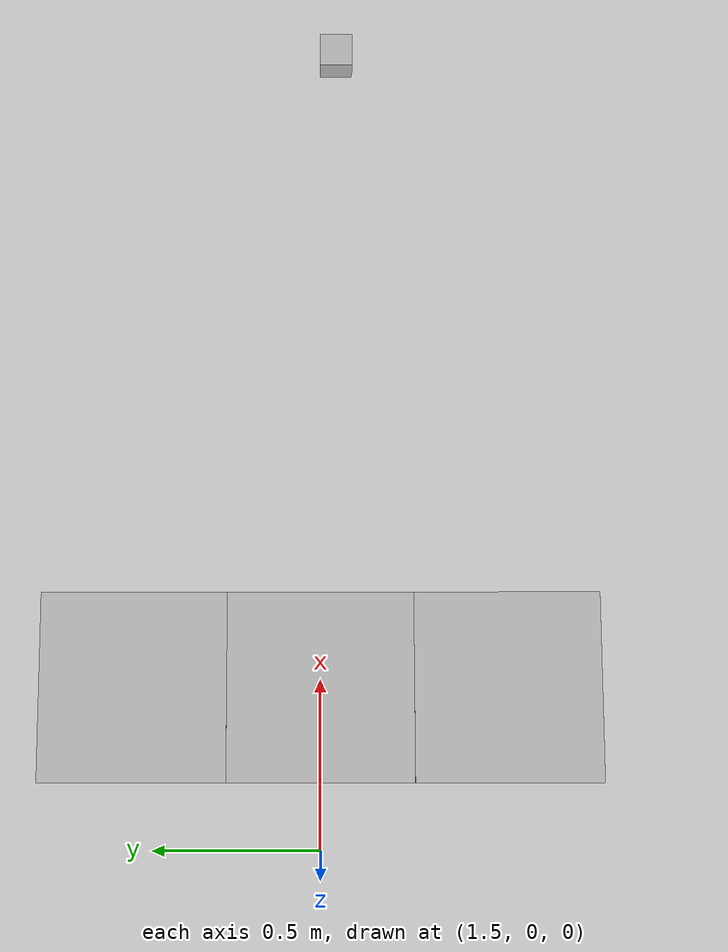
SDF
<?xml version="1.0" ?>
<!--
  Demo world with a widget displaying images coming from a camera sensor.
-->
<sdf version="1.8">
  <world name="camera_sensor">
    <physics name="1ms" type="ignored">
      <max_step_size>0.001</max_step_size>
      <real_time_factor>1.0</real_time_factor>
    </physics>
    <plugin
      filename="gz-sim-physics-system"
      name="gz::sim::systems::Physics">
    </plugin>
    <plugin
      filename="gz-sim-sensors-system"
      name="gz::sim::systems::Sensors">
      <render_engine>ogre2</render_engine>
    </plugin>
    <plugin
      filename="gz-sim-user-commands-system"
      name="gz::sim::systems::UserCommands">
    </plugin>
    <plugin
      filename="gz-sim-scene-broadcaster-system"
      name="gz::sim::systems::SceneBroadcaster">
    </plugin>

    <scene>
      <ambient>1.0 1.0 1.0</ambient>
      <background>0.8 0.8 0.8</background>
      <grid>true</grid>
    </scene>

    <gui fullscreen="0">

      <!-- 3D scene -->
      <plugin filename="MinimalScene" name="3D View">
        <gz-gui>
          <title>3D View</title>
          <property type="bool" key="showTitleBar">false</property>
          <property type="string" key="state">docked</property>
        </gz-gui>

        <engine>ogre2</engine>
        <scene>scene</scene>
        <ambient_light>0.4 0.4 0.4</ambient_light>
        <background_color>0.8 0.8 0.8</background_color>
        <camera_pose>-6 0 6 0 0.5 0</camera_pose>
      </plugin>

      <!-- Plugins that add functionality to the scene -->
      <plugin filename="EntityContextMenuPlugin" name="Entity context menu">
        <gz-gui>
          <property key="state" type="string">floating</property>
          <property key="width" type="double">5</property>
          <property key="height" type="double">5</property>
          <property key="showTitleBar" type="bool">false</property>
        </gz-gui>
      </plugin>
      <plugin filename="GzSceneManager" name="Scene Manager">
        <gz-gui>
          <property key="resizable" type="bool">false</property>
          <property key="width" type="double">5</property>
          <property key="height" type="double">5</property>
          <property key="state" type="string">floating</property>
          <property key="showTitleBar" type="bool">false</property>
        </gz-gui>
      </plugin>
      <plugin filename="InteractiveViewControl" name="Interactive view control">
        <gz-gui>
          <property key="resizable" type="bool">false</property>
          <property key="width" type="double">5</property>
          <property key="height" type="double">5</property>
          <property key="state" type="string">floating</property>
          <property key="showTitleBar" type="bool">false</property>
        </gz-gui>
      </plugin>
      <plugin filename="CameraTracking" name="Camera Tracking">
        <gz-gui>
          <property key="resizable" type="bool">false</property>
          <property key="width" type="double">5</property>
          <property key="height" type="double">5</property>
          <property key="state" type="string">floating</property>
          <property key="showTitleBar" type="bool">false</property>
        </gz-gui>
      </plugin>
      <!-- World control -->
      <plugin filename="WorldControl" name="World control">
        <gz-gui>
          <title>World control</title>
          <property type="bool" key="showTitleBar">false</property>
          <property type="bool" key="resizable">false</property>
          <property type="double" key="height">72</property>
          <property type="double" key="z">1</property>

          <property type="string" key="state">floating</property>
          <anchors target="3D View">
            <line own="left" target="left"/>
            <line own="bottom" target="bottom"/>
          </anchors>
        </gz-gui>

        <play_pause>true</play_pause>
        <step>true</step>
        <start_paused>false</start_paused>
        <use_event>true</use_event>

      </plugin>

      <!-- World statistics -->
      <plugin filename="WorldStats" name="World stats">
        <gz-gui>
          <title>World stats</title>
          <property type="bool" key="showTitleBar">false</property>
          <property type="bool" key="resizable">false</property>
          <property type="double" key="height">110</property>
          <property type="double" key="width">290</property>
          <property type="double" key="z">1</property>

          <property type="string" key="state">floating</property>
          <anchors target="3D View">
            <line own="right" target="right"/>
            <line own="bottom" target="bottom"/>
          </anchors>
        </gz-gui>

        <sim_time>true</sim_time>
        <real_time>true</real_time>
        <real_time_factor>true</real_time_factor>
        <iterations>true</iterations>
      </plugin>

      <plugin filename="ImageDisplay" name="Image Display">
        <gz-gui>
          <property key="state" type="string">docked</property>
        </gz-gui>
        <topic>camera</topic>
      </plugin>

      <!-- Inspector -->
      <plugin filename="ComponentInspector" name="Component inspector">
        <gz-gui>
          <property type="string" key="state">docked</property>
        </gz-gui>
      </plugin>

      <!-- Entity tree -->
      <plugin filename="EntityTree" name="Entity tree">
        <gz-gui>
          <property type="string" key="state">docked</property>
        </gz-gui>
      </plugin>
    </gui>

    <light type="directional" name="sun">
      <cast_shadows>true</cast_shadows>
      <pose>0 0 10 0 0 0</pose>
      <diffuse>0.8 0.8 0.8 1</diffuse>
      <specular>0.8 0.8 0.8 1</specular>
      <attenuation>
        <range>1000</range>
        <constant>0.9</constant>
        <linear>0.01</linear>
        <quadratic>0.001</quadratic>
      </attenuation>
      <direction>-0.5 0.1 -0.9</direction>
    </light>

    <model name="ground_plane">
      <static>true</static>
      <link name="link">
        <collision name="collision">
          <geometry>
            <plane>
              <normal>0 0 1</normal>
              <size>100 100</size>
            </plane>
          </geometry>
        </collision>
        <visual name="visual">
          <geometry>
            <plane>
              <normal>0 0 1</normal>
              <size>100 100</size>
            </plane>
          </geometry>
          <material>
            <ambient>0.8 0.8 0.8 1</ambient>
            <diffuse>0.8 0.8 0.8 1</diffuse>
            <specular>0.8 0.8 0.8 1</specular>
          </material>
        </visual>
      </link>
    </model>

    <model name="camera">
      <pose>4 0 0 0 0.0 3.14</pose>
      <link name="link">
        <pose>0.05 0.05 0.05 0 0 0</pose>
        <inertial>
          <mass>0.1</mass>
          <inertia>
            <ixx>0.000166667</ixx>
            <iyy>0.000166667</iyy>
            <izz>0.000166667</izz>
          </inertia>
        </inertial>
        <collision name="collision">
          <geometry>
            <box>
              <size>0.1 0.1 0.1</size>
            </box>
          </geometry>
        </collision>
        <visual name="visual">
          <geometry>
            <box>
              <size>0.1 0.1 0.1</size>
            </box>
          </geometry>
        </visual>
        <sensor name="camera" type="camera">
          <camera>
            <horizontal_fov>1.047</horizontal_fov>
            <image>
              <width>320</width>
              <height>240</height>
            </image>
            <clip>
              <near>0.1</near>
              <far>100</far>
            </clip>
          </camera>
          <always_on>1</always_on>
          <update_rate>30</update_rate>
          <visualize>true</visualize>
          <topic>camera</topic>
        </sensor>
      </link>
    </model>

    <include>
      <pose>2 0 0.25 0 0 0</pose>
      <name>box_1</name>
      <uri>model://aruco_box</uri>
    </include>

    <include>
      <pose>2 -0.5 0.25 0 0 -1.57</pose>
      <name>box_2</name>
      <uri>model://aruco_box</uri>
    </include>

    <include>
      <pose>2 0.5 0.25 0 0 1.57</pose>
      <name>box_3</name>
      <uri>model://aruco_box</uri>
    </include>

  </world>
</sdf>

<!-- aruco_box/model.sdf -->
<sdf version="1.5">

 <model name='aruco_box'>
      <pose>0 0 0 0 -0 0</pose>
      <link name='link'>
        <inertial>
          <mass>1</mass>
          <inertia>
            <ixx>0.166667</ixx>
            <ixy>0</ixy>
            <ixz>0</ixz>
            <iyy>0.166667</iyy>
            <iyz>0</iyz>
            <izz>0.166667</izz>
          </inertia>
          <pose>0 0 0 0 -0 0</pose>
        </inertial>
        <collision name='collision'>
          <geometry>
            <box>
              <size>0.5 0.5 0.5</size>
            </box>
          </geometry>
          <surface>
            <contact>
              <ode/>
            </contact>
            <bounce/>
            <friction>
              <torsional>
                <ode/>
              </torsional>
              <ode/>
            </friction>
          </surface>
          <max_contacts>10</max_contacts>
        </collision>
        <visual name='aruco_box_mesh'>
          <geometry>
            <mesh>
                <uri>model://aruco_box/model.dae</uri>
                <scale>0.25 0.25 0.25</scale>
            </mesh>
          </geometry>
        </visual>
        <self_collide>0</self_collide>
        <enable_wind>0</enable_wind>
        <kinematic>0</kinematic>
      </link>
    </model>
    </sdf>
